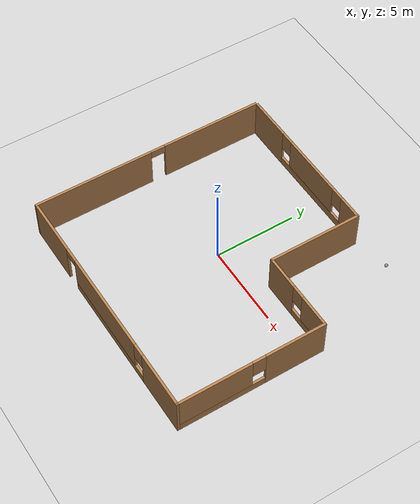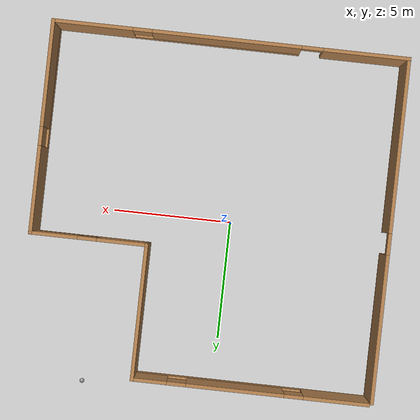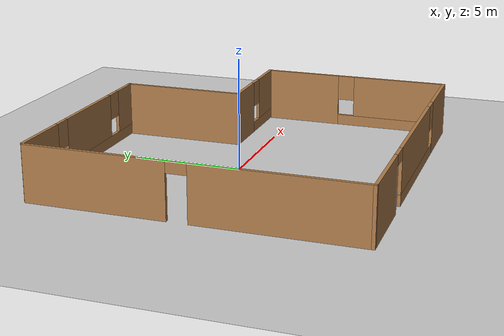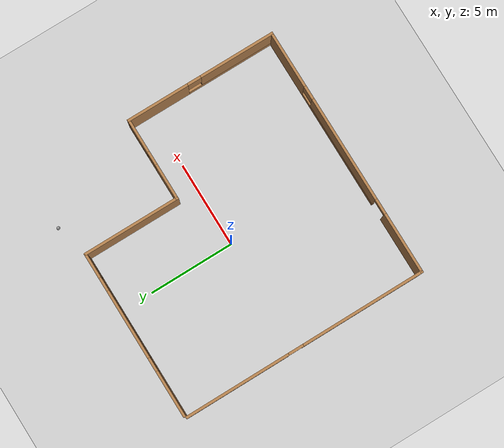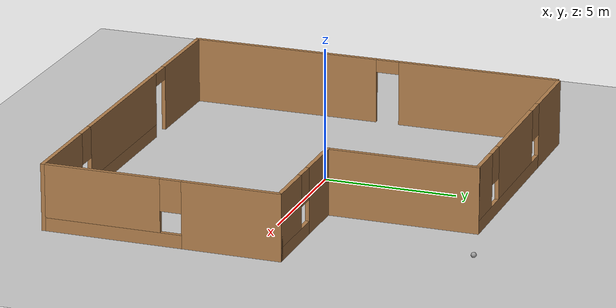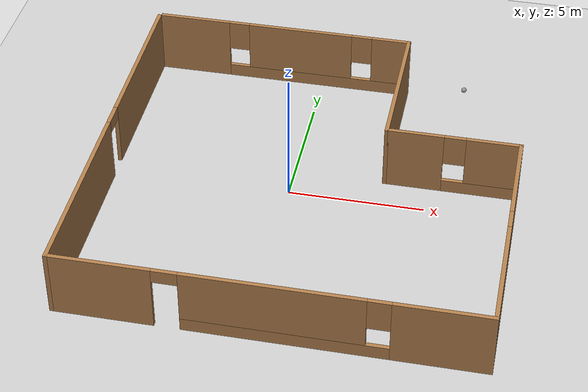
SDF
<sdf version="1.6">
 <world name="default">
  <light name="sun" type="directional">
   <pose>0 0 10 0 -0 0</pose>
   <diffuse>0.8 0.8 0.8 1</diffuse>
   <specular>0.2 0.2 0.2 1</specular>
   <attenuation>
    <range>1000</range>
    <constant>0.9</constant>
    <linear>0.01</linear>
    <quadratic>0.001</quadratic>
   </attenuation>
   <direction>-0.5 0.1 -0.9</direction>
  </light>
  <model name="ground_plane">
   <static>1</static>
   <link name="link">
    <collision name="collision">
     <geometry><plane><normal>0 0 1</normal><size>100 100</size></plane></geometry>
     <surface><friction><ode><mu>100</mu><mu2>50</mu2></ode></friction></surface>
    </collision>
    <visual name="visual">
     <cast_shadows>0</cast_shadows>
     <geometry><plane><normal>0 0 1</normal><size>100 100</size></plane></geometry>
     <material>
      <script><uri>file://media/materials/scripts/gazebo.material</uri><name>Gazebo/Grey</name></script>
     </material>
    </visual>
   </link>
  </model>
  <gravity>0 0 -9.8</gravity>
  <magnetic_field>6e-06 2.3e-05 -4.2e-05</magnetic_field>
  <atmosphere type="adiabatic"/>
  <physics name="default_physics" default="0" type="ode">
   <max_step_size>0.001</max_step_size>
   <real_time_factor>1</real_time_factor>
   <real_time_update_rate>1000</real_time_update_rate>
  </physics>
  <scene><ambient>0.4 0.4 0.4 1</ambient><background>0.7 0.7 0.7 1</background><shadows>1</shadows></scene>
  <spherical_coordinates>
   <surface_model>EARTH_WGS84</surface_model>
   <latitude_deg>0</latitude_deg>
   <longitude_deg>0</longitude_deg>
   <elevation>0</elevation>
   <heading_deg>0</heading_deg>
  </spherical_coordinates>
  <model name="My_building">
   <pose>0.787749 -0.349987 0 0 -0 0</pose>
   <link name="Wall_13">
    <pose>-2.35 7.225 0 0 -0 0</pose>
    <visual name="Wall_13_Visual_0">
     <pose>-3.60872 0 1.25 0 -0 0</pose>
     <geometry><box><size>2.78257 0.15 2.5</size></box></geometry>
     <material>
      <script><uri>file://media/materials/scripts/gazebo.material</uri><name>Gazebo/Wood</name></script>
      <ambient>1 1 1 1</ambient>
     </material>
     <meta><layer>0</layer></meta>
    </visual>
    <collision name="Wall_13_Collision_0">
     <geometry><box><size>2.78257 0.15 2.5</size></box></geometry>
     <pose>-3.60872 0 1.25 0 -0 0</pose>
    </collision>
    <visual name="Wall_13_Visual_1">
     <pose>1.39128 0 0.25 0 -0 0</pose>
     <geometry><box><size>7.21743 0.15 0.5</size></box></geometry>
     <material>
      <script><uri>file://media/materials/scripts/gazebo.material</uri><name>Gazebo/Wood</name></script>
      <ambient>1 1 1 1</ambient>
     </material>
     <meta><layer>0</layer></meta>
    </visual>
    <collision name="Wall_13_Collision_1">
     <geometry><box><size>7.21743 0.15 0.5</size></box></geometry>
     <pose>1.39128 0 0.25 0 -0 0</pose>
    </collision>
    <visual name="Wall_13_Visual_2">
     <pose>0.631176 0 1.5 0 -0 0</pose>
     <geometry><box><size>4.09722 0.15 2</size></box></geometry>
     <material>
      <script><uri>file://media/materials/scripts/gazebo.material</uri><name>Gazebo/Wood</name></script>
      <ambient>1 1 1 1</ambient>
     </material>
     <meta><layer>0</layer></meta>
    </visual>
    <collision name="Wall_13_Collision_2">
     <geometry><box><size>4.09722 0.15 2</size></box></geometry>
     <pose>0.631176 0 1.5 0 -0 0</pose>
    </collision>
    <visual name="Wall_13_Visual_3">
     <pose>4.23989 0 1.5 0 -0 0</pose>
     <geometry><box><size>1.52022 0.15 2</size></box></geometry>
     <material>
      <script><uri>file://media/materials/scripts/gazebo.material</uri><name>Gazebo/Wood</name></script>
      <ambient>1 1 1 1</ambient>
     </material>
     <meta><layer>0</layer></meta>
    </visual>
    <collision name="Wall_13_Collision_3">
     <geometry><box><size>1.52022 0.15 2</size></box></geometry>
     <pose>4.23989 0 1.5 0 -0 0</pose>
    </collision>
    <visual name="Wall_13_Visual_4">
     <pose>-1.81743 0 1.9 0 -0 0</pose>
     <geometry><box><size>0.8 0.15 1.2</size></box></geometry>
     <material>
      <script><uri>file://media/materials/scripts/gazebo.material</uri><name>Gazebo/Wood</name></script>
      <ambient>1 1 1 1</ambient>
     </material>
     <meta><layer>0</layer></meta>
    </visual>
    <collision name="Wall_13_Collision_4">
     <geometry><box><size>0.8 0.15 1.2</size></box></geometry>
     <pose>-1.81743 0 1.9 0 -0 0</pose>
    </collision>
    <visual name="Wall_13_Visual_5">
     <pose>3.07979 0 1.9 0 -0 0</pose>
     <geometry><box><size>0.8 0.15 1.2</size></box></geometry>
     <material>
      <script><uri>file://media/materials/scripts/gazebo.material</uri><name>Gazebo/Wood</name></script>
      <ambient>1 1 1 1</ambient>
     </material>
     <meta><layer>0</layer></meta>
    </visual>
    <collision name="Wall_13_Collision_5">
     <geometry><box><size>0.8 0.15 1.2</size></box></geometry>
     <pose>3.07979 0 1.9 0 -0 0</pose>
    </collision>
   </link>
   <link name="Wall_14">
    <collision name="Wall_14_Collision">
     <geometry><box><size>5.75 0.15 2.5</size></box></geometry>
     <pose>0 0 1.25 0 -0 0</pose>
    </collision>
    <visual name="Wall_14_Visual">
     <pose>0 0 1.25 0 -0 0</pose>
     <geometry><box><size>5.75 0.15 2.5</size></box></geometry>
     <material>
      <script><uri>file://media/materials/scripts/gazebo.material</uri><name>Gazebo/Wood</name></script>
      <ambient>0.760784 0.662745 0.627451 1</ambient>
     </material>
     <meta><layer>0</layer></meta>
    </visual>
    <pose>2.575 4.425 0 0 0 -1.5708</pose>
   </link>
   <link name="Wall_15">
    <pose>5 1.625 0 0 -0 0</pose>
    <visual name="Wall_15_Visual_0">
     <pose>-1.41634 0 1.25 0 -0 0</pose>
     <geometry><box><size>2.16732 0.15 2.5</size></box></geometry>
     <material>
      <script><uri>file://media/materials/scripts/gazebo.material</uri><name>Gazebo/Wood</name></script>
      <ambient>0.760784 0.662745 0.627451 1</ambient>
     </material>
     <meta><layer>0</layer></meta>
    </visual>
    <collision name="Wall_15_Collision_0">
     <geometry><box><size>2.16732 0.15 2.5</size></box></geometry>
     <pose>-1.41634 0 1.25 0 -0 0</pose>
    </collision>
    <visual name="Wall_15_Visual_1">
     <pose>1.08366 0 0.25 0 -0 0</pose>
     <geometry><box><size>2.83268 0.15 0.5</size></box></geometry>
     <material>
      <script><uri>file://media/materials/scripts/gazebo.material</uri><name>Gazebo/Wood</name></script>
      <ambient>0.760784 0.662745 0.627451 1</ambient>
     </material>
     <meta><layer>0</layer></meta>
    </visual>
    <collision name="Wall_15_Collision_1">
     <geometry><box><size>2.83268 0.15 0.5</size></box></geometry>
     <pose>1.08366 0 0.25 0 -0 0</pose>
    </collision>
    <visual name="Wall_15_Visual_2">
     <pose>1.48366 0 1.5 0 -0 0</pose>
     <geometry><box><size>2.03268 0.15 2</size></box></geometry>
     <material>
      <script><uri>file://media/materials/scripts/gazebo.material</uri><name>Gazebo/Wood</name></script>
      <ambient>0.760784 0.662745 0.627451 1</ambient>
     </material>
     <meta><layer>0</layer></meta>
    </visual>
    <collision name="Wall_15_Collision_2">
     <geometry><box><size>2.03268 0.15 2</size></box></geometry>
     <pose>1.48366 0 1.5 0 -0 0</pose>
    </collision>
    <visual name="Wall_15_Visual_3">
     <pose>0.06732 0 1.9 0 -0 0</pose>
     <geometry><box><size>0.8 0.15 1.2</size></box></geometry>
     <material>
      <script><uri>file://media/materials/scripts/gazebo.material</uri><name>Gazebo/Wood</name></script>
      <ambient>0.760784 0.662745 0.627451 1</ambient>
     </material>
     <meta><layer>0</layer></meta>
    </visual>
    <collision name="Wall_15_Collision_3">
     <geometry><box><size>0.8 0.15 1.2</size></box></geometry>
     <pose>0.06732 0 1.9 0 -0 0</pose>
    </collision>
   </link>
   <link name="Wall_16">
    <pose>7.425 -2.8 0 0 0 -1.5708</pose>
    <visual name="Wall_16_Visual_0">
     <pose>-2.64832 0 1.25 0 -0 0</pose>
     <geometry><box><size>3.70336 0.15 2.5</size></box></geometry>
     <material>
      <script><uri>file://media/materials/scripts/gazebo.material</uri><name>Gazebo/Wood</name></script>
      <ambient>0.760784 0.662745 0.627451 1</ambient>
     </material>
     <meta><layer>0</layer></meta>
    </visual>
    <collision name="Wall_16_Collision_0">
     <geometry><box><size>3.70336 0.15 2.5</size></box></geometry>
     <pose>-2.64832 0 1.25 0 -0 0</pose>
    </collision>
    <visual name="Wall_16_Visual_1">
     <pose>1.85168 0 0.25 0 -0 0</pose>
     <geometry><box><size>5.29664 0.15 0.5</size></box></geometry>
     <material>
      <script><uri>file://media/materials/scripts/gazebo.material</uri><name>Gazebo/Wood</name></script>
      <ambient>0.760784 0.662745 0.627451 1</ambient>
     </material>
     <meta><layer>0</layer></meta>
    </visual>
    <collision name="Wall_16_Collision_1">
     <geometry><box><size>5.29664 0.15 0.5</size></box></geometry>
     <pose>1.85168 0 0.25 0 -0 0</pose>
    </collision>
    <visual name="Wall_16_Visual_2">
     <pose>2.25168 0 1.5 0 -0 0</pose>
     <geometry><box><size>4.49664 0.15 2</size></box></geometry>
     <material>
      <script><uri>file://media/materials/scripts/gazebo.material</uri><name>Gazebo/Wood</name></script>
      <ambient>0.760784 0.662745 0.627451 1</ambient>
     </material>
     <meta><layer>0</layer></meta>
    </visual>
    <collision name="Wall_16_Collision_2">
     <geometry><box><size>4.49664 0.15 2</size></box></geometry>
     <pose>2.25168 0 1.5 0 -0 0</pose>
    </collision>
    <visual name="Wall_16_Visual_3">
     <pose>-0.396642 0 1.9 0 -0 0</pose>
     <geometry><box><size>0.8 0.15 1.2</size></box></geometry>
     <material>
      <script><uri>file://media/materials/scripts/gazebo.material</uri><name>Gazebo/Wood</name></script>
      <ambient>0.760784 0.662745 0.627451 1</ambient>
     </material>
     <meta><layer>0</layer></meta>
    </visual>
    <collision name="Wall_16_Collision_3">
     <geometry><box><size>0.8 0.15 1.2</size></box></geometry>
     <pose>-0.396642 0 1.9 0 -0 0</pose>
    </collision>
   </link>
   <link name="Wall_17">
    <pose>0 -7.225 0 0 -0 3.14159</pose>
    <visual name="Wall_17_Visual_0">
     <pose>-5.80155 0 1.25 0 -0 0</pose>
     <geometry><box><size>3.3969 0.15 2.5</size></box></geometry>
     <material>
      <script><uri>file://media/materials/scripts/gazebo.material</uri><name>Gazebo/Wood</name></script>
      <ambient>0.760784 0.662745 0.627451 1</ambient>
     </material>
     <meta><layer>0</layer></meta>
    </visual>
    <collision name="Wall_17_Collision_0">
     <geometry><box><size>3.3969 0.15 2.5</size></box></geometry>
     <pose>-5.80155 0 1.25 0 -0 0</pose>
    </collision>
    <visual name="Wall_17_Visual_1">
     <pose>5.67394 0 1.25 0 -0 0</pose>
     <geometry><box><size>3.65213 0.15 2.5</size></box></geometry>
     <material>
      <script><uri>file://media/materials/scripts/gazebo.material</uri><name>Gazebo/Wood</name></script>
      <ambient>0.760784 0.662745 0.627451 1</ambient>
     </material>
     <meta><layer>0</layer></meta>
    </visual>
    <collision name="Wall_17_Collision_1">
     <geometry><box><size>3.65213 0.15 2.5</size></box></geometry>
     <pose>5.67394 0 1.25 0 -0 0</pose>
    </collision>
    <visual name="Wall_17_Visual_2">
     <pose>-0.577613 0 0.25 0 -0 0</pose>
     <geometry><box><size>7.05096 0.15 0.5</size></box></geometry>
     <material>
      <script><uri>file://media/materials/scripts/gazebo.material</uri><name>Gazebo/Wood</name></script>
      <ambient>0.760784 0.662745 0.627451 1</ambient>
     </material>
     <meta><layer>0</layer></meta>
    </visual>
    <collision name="Wall_17_Collision_2">
     <geometry><box><size>7.05096 0.15 0.5</size></box></geometry>
     <pose>-0.577613 0 0.25 0 -0 0</pose>
    </collision>
    <visual name="Wall_17_Visual_3">
     <pose>-0.177613 0 1.5 0 -0 0</pose>
     <geometry><box><size>6.25096 0.15 2</size></box></geometry>
     <material>
      <script><uri>file://media/materials/scripts/gazebo.material</uri><name>Gazebo/Wood</name></script>
      <ambient>0.760784 0.662745 0.627451 1</ambient>
     </material>
     <meta><layer>0</layer></meta>
    </visual>
    <collision name="Wall_17_Collision_3">
     <geometry><box><size>6.25096 0.15 2</size></box></geometry>
     <pose>-0.177613 0 1.5 0 -0 0</pose>
    </collision>
    <visual name="Wall_17_Visual_4">
     <pose>-3.70309 0 1.9 0 -0 0</pose>
     <geometry><box><size>0.8 0.15 1.2</size></box></geometry>
     <material>
      <script><uri>file://media/materials/scripts/gazebo.material</uri><name>Gazebo/Wood</name></script>
      <ambient>0.760784 0.662745 0.627451 1</ambient>
     </material>
     <meta><layer>0</layer></meta>
    </visual>
    <collision name="Wall_17_Collision_4">
     <geometry><box><size>0.8 0.15 1.2</size></box></geometry>
     <pose>-3.70309 0 1.9 0 -0 0</pose>
    </collision>
    <visual name="Wall_17_Visual_5">
     <pose>3.39787 0 2.25 0 -0 0</pose>
     <geometry><box><size>0.9 0.15 0.5</size></box></geometry>
     <material>
      <script><uri>file://media/materials/scripts/gazebo.material</uri><name>Gazebo/Wood</name></script>
      <ambient>0.760784 0.662745 0.627451 1</ambient>
     </material>
     <meta><layer>0</layer></meta>
    </visual>
    <collision name="Wall_17_Collision_5">
     <geometry><box><size>0.9 0.15 0.5</size></box></geometry>
     <pose>3.39787 0 2.25 0 -0 0</pose>
    </collision>
   </link>
   <link name="Wall_18">
    <pose>-7.425 -0.049999 0 0 -0 1.5708</pose>
    <visual name="Wall_18_Visual_0">
     <pose>-3.575 0 1.25 0 -0 0</pose>
     <geometry><box><size>7.34999 0.15 2.5</size></box></geometry>
     <material>
      <script><uri>file://media/materials/scripts/gazebo.material</uri><name>Gazebo/Wood</name></script>
      <ambient>0.760784 0.662745 0.627451 1</ambient>
     </material>
     <meta><layer>0</layer></meta>
    </visual>
    <collision name="Wall_18_Collision_0">
     <geometry><box><size>7.34999 0.15 2.5</size></box></geometry>
     <pose>-3.575 0 1.25 0 -0 0</pose>
    </collision>
    <visual name="Wall_18_Visual_1">
     <pose>4.125 0 1.25 0 -0 0</pose>
     <geometry><box><size>6.25001 0.15 2.5</size></box></geometry>
     <material>
      <script><uri>file://media/materials/scripts/gazebo.material</uri><name>Gazebo/Wood</name></script>
      <ambient>0.760784 0.662745 0.627451 1</ambient>
     </material>
     <meta><layer>0</layer></meta>
    </visual>
    <collision name="Wall_18_Collision_1">
     <geometry><box><size>6.25001 0.15 2.5</size></box></geometry>
     <pose>4.125 0 1.25 0 -0 0</pose>
    </collision>
    <visual name="Wall_18_Visual_2">
     <pose>0.549992 0 2.25 0 -0 0</pose>
     <geometry><box><size>0.9 0.15 0.5</size></box></geometry>
     <material>
      <script><uri>file://media/materials/scripts/gazebo.material</uri><name>Gazebo/Wood</name></script>
      <ambient>0.760784 0.662745 0.627451 1</ambient>
     </material>
     <meta><layer>0</layer></meta>
    </visual>
    <collision name="Wall_18_Collision_2">
     <geometry><box><size>0.9 0.15 0.5</size></box></geometry>
     <pose>0.549992 0 2.25 0 -0 0</pose>
    </collision>
   </link>
   <static>1</static>
  </model>
  <model name="ball">
   <link name="link_0">
    <inertial>
     <mass>1</mass>
     <inertia><ixx>0.1</ixx><ixy>0</ixy><ixz>0</ixz><iyy>0.1</iyy><iyz>0</iyz><izz>0.1</izz></inertia>
    </inertial>
    <visual name="visual">
     <geometry><sphere><radius>0.1</radius></sphere></geometry>
     <material>
      <lighting>1</lighting>
      <script><uri>file://media/materials/scripts/gazebo.material</uri><name>Gazebo/Grey</name></script>
      <ambient>1 1 1 1</ambient>
      <diffuse>1 1 1 1</diffuse>
      <specular>1 1 1 1</specular>
      <emissive>1 1 1 1</emissive>
      <shader type="vertex"><normal_map>__default__</normal_map></shader>
     </material>
    </visual>
    <collision name="collision">
     <geometry><sphere><radius>0.1</radius></sphere></geometry>
     <surface>
      <friction>
       <ode><mu>1</mu><mu2>1</mu2><fdir1>0 0 0</fdir1><slip1>0</slip1><slip2>0</slip2></ode>
       <torsional>
        <coefficient>1</coefficient>
        <patch_radius>0</patch_radius>
        <surface_radius>0</surface_radius>
        <use_patch_radius>1</use_patch_radius>
        <ode><slip>0</slip></ode>
       </torsional>
      </friction>
      <bounce><restitution_coefficient>0</restitution_coefficient><threshold>1e+06</threshold></bounce>
      <contact>
       <collide_without_contact>0</collide_without_contact>
       <collide_without_contact_bitmask>1</collide_without_contact_bitmask>
       <collide_bitmask>1</collide_bitmask>
       <ode>
        <soft_cfm>0</soft_cfm>
        <soft_erp>0.2</soft_erp>
        <kp>1e+13</kp>
        <kd>1</kd>
        <max_vel>0.01</max_vel>
        <min_depth>0</min_depth>
       </ode>
       <bullet>
        <split_impulse>1</split_impulse>
        <split_impulse_penetration_threshold>-0.01</split_impulse_penetration_threshold>
        <soft_cfm>0</soft_cfm>
        <soft_erp>0.2</soft_erp>
        <kp>1e+13</kp>
        <kd>1</kd>
       </bullet>
      </contact>
     </surface>
    </collision>
   </link>
   <static>0</static>
   <pose>5.61344 7.45896 0.1 0 -0 0</pose>
  </model>
 </world>
</sdf>
